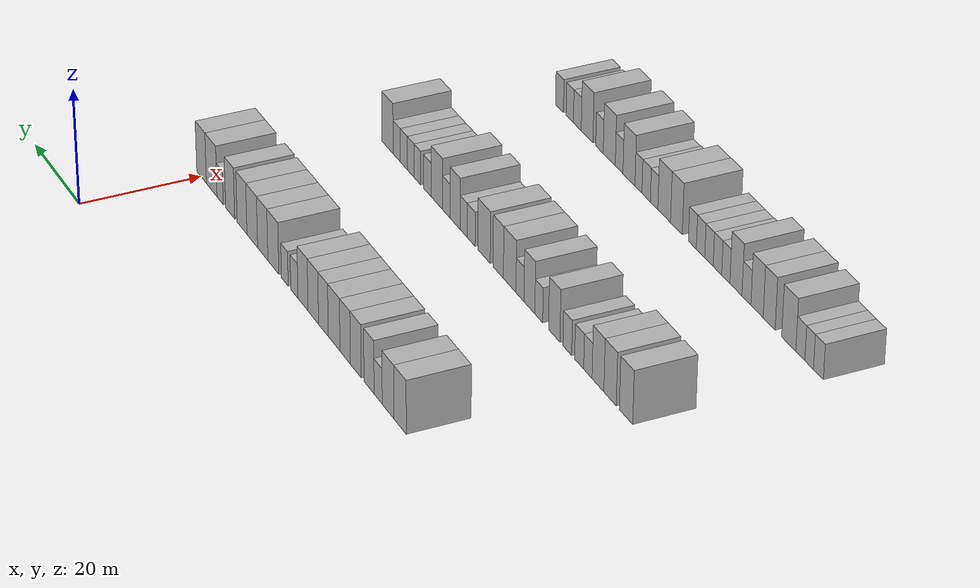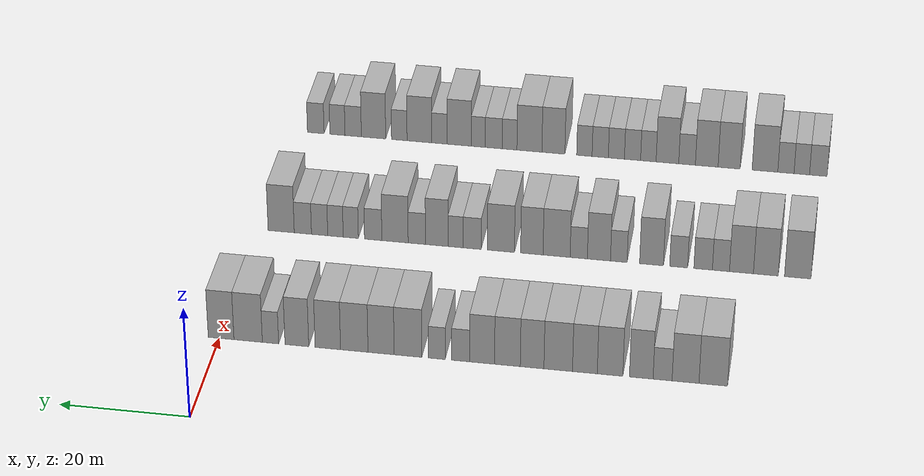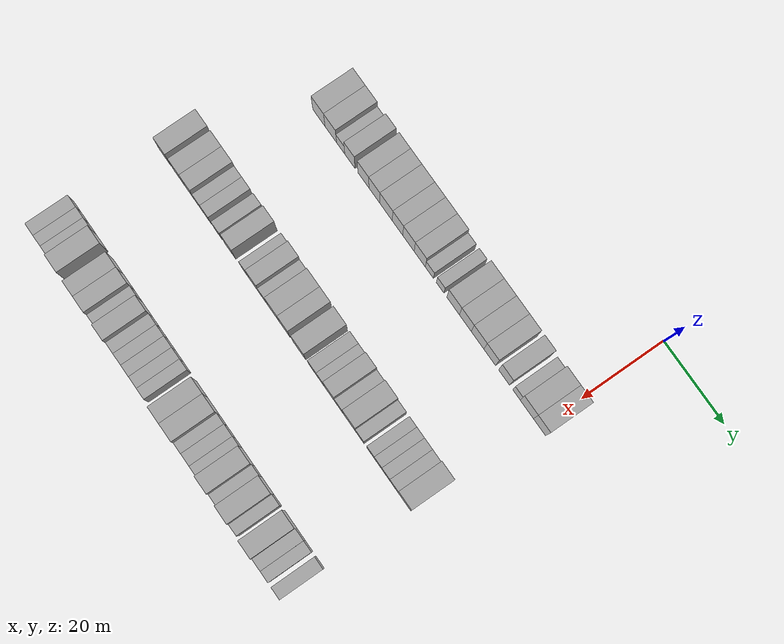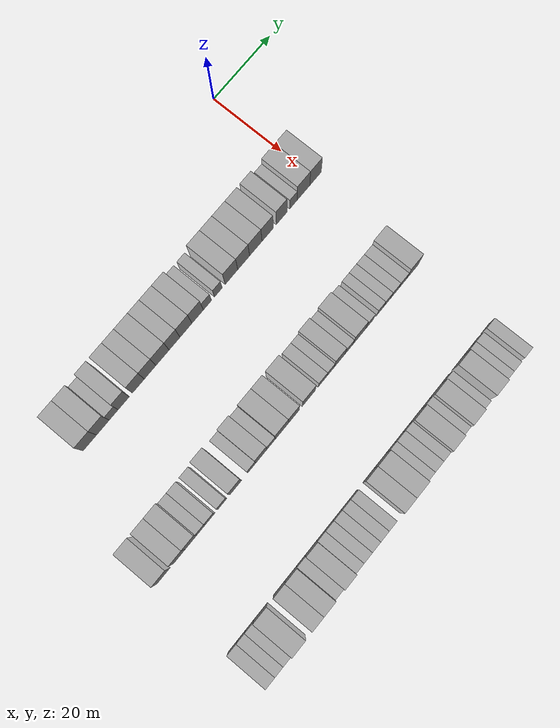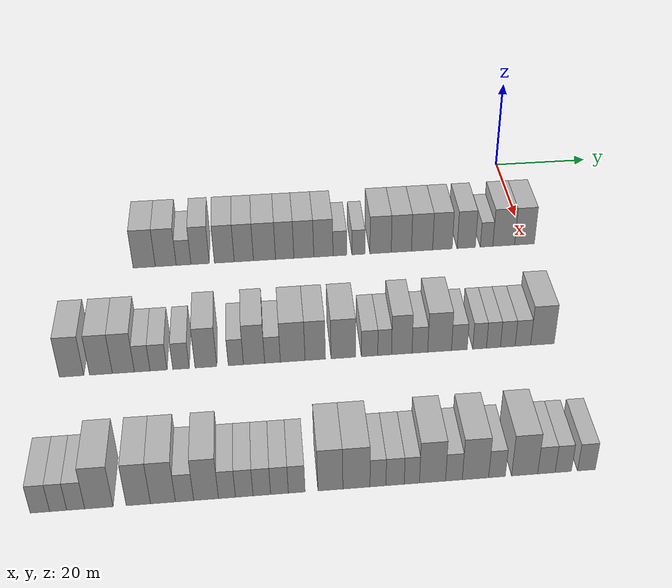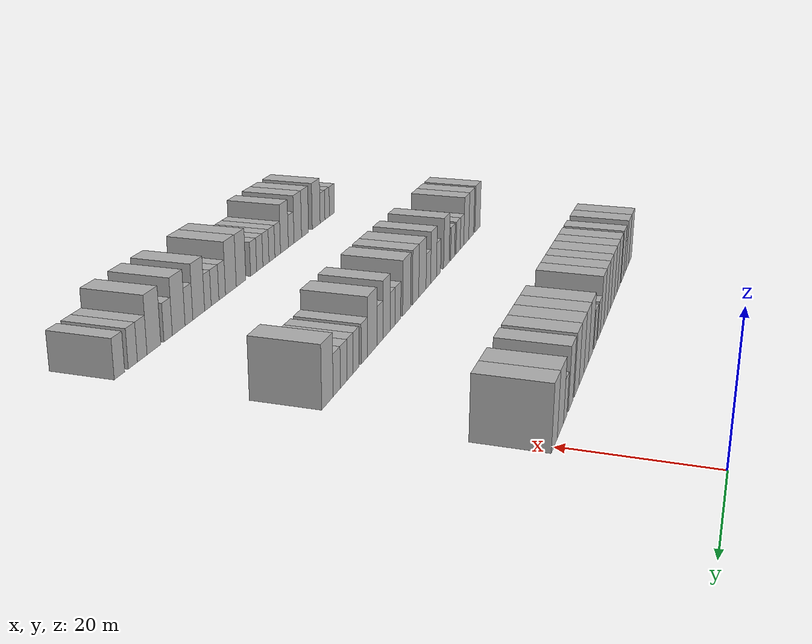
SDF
<sdf version="1.6">
 <world name="default">
  <model name="building_50">
   <static>1</static>
   <pose>25.0000 -76.2877 0 0.000000 0.000000 0.000000</pose>
   <link name="link">
    <pose>0 0 4.50 0 0 0</pose>
    <collision name="collision"><geometry><box><size>10.0000 4.3234 9.0000</size></box></geometry></collision>
    <visual name="visual">
     <cast_shadows>0</cast_shadows>
     <geometry><box><size>10.0000 4.3234 9.0000</size></box></geometry>
     <material>
      <script>
       <uri>model://HANNAS_wall/materials/scripts</uri>
       <uri>model://HANNAS_wall/materials/textures</uri>
       <name>vrc/HANNAS_wall</name>
      </script>
     </material>
    </visual>
   </link>
  </model>
  <model name="building_51">
   <static>1</static>
   <pose>25.0000 -72.0856 0 0.000000 0.000000 0.000000</pose>
   <link name="link">
    <pose>0 0 4.50 0 0 0</pose>
    <collision name="collision"><geometry><box><size>10.0000 4.0809 9.0000</size></box></geometry></collision>
    <visual name="visual">
     <cast_shadows>0</cast_shadows>
     <geometry><box><size>10.0000 4.0809 9.0000</size></box></geometry>
     <material>
      <script>
       <uri>model://HANNAS_wall/materials/scripts</uri>
       <uri>model://HANNAS_wall/materials/textures</uri>
       <name>vrc/HANNAS_wall</name>
      </script>
     </material>
    </visual>
   </link>
  </model>
  <model name="building_52">
   <static>1</static>
   <pose>25.0000 -68.6039 0 0.000000 0.000000 0.000000</pose>
   <link name="link">
    <pose>0 0 3.00 0 0 0</pose>
    <collision name="collision"><geometry><box><size>10.0000 2.8825 6.0000</size></box></geometry></collision>
    <visual name="visual">
     <cast_shadows>0</cast_shadows>
     <geometry><box><size>10.0000 2.8825 6.0000</size></box></geometry>
     <material>
      <script>
       <uri>model://HANNAS_wall/materials/scripts</uri>
       <uri>model://HANNAS_wall/materials/textures</uri>
       <name>vrc/HANNAS_wall</name>
      </script>
     </material>
    </visual>
   </link>
  </model>
  <model name="building_53">
   <static>1</static>
   <pose>25.0000 -65.3597 0 0.000000 0.000000 0.000000</pose>
   <link name="link">
    <pose>0 0 4.50 0 0 0</pose>
    <collision name="collision"><geometry><box><size>10.0000 3.6057 9.0000</size></box></geometry></collision>
    <visual name="visual">
     <cast_shadows>0</cast_shadows>
     <geometry><box><size>10.0000 3.6057 9.0000</size></box></geometry>
     <material>
      <script>
       <uri>model://HANNAS_wall/materials/scripts</uri>
       <uri>model://HANNAS_wall/materials/textures</uri>
       <name>vrc/HANNAS_wall</name>
      </script>
     </material>
    </visual>
   </link>
  </model>
  <model name="building_54">
   <static>1</static>
   <pose>25.0000 -60.6032 0 0.000000 0.000000 0.000000</pose>
   <link name="link">
    <pose>0 0 4.50 0 0 0</pose>
    <collision name="collision"><geometry><box><size>10.0000 3.9074 9.0000</size></box></geometry></collision>
    <visual name="visual">
     <cast_shadows>0</cast_shadows>
     <geometry><box><size>10.0000 3.9074 9.0000</size></box></geometry>
     <material>
      <script>
       <uri>model://HANNAS_wall/materials/scripts</uri>
       <uri>model://HANNAS_wall/materials/textures</uri>
       <name>vrc/HANNAS_wall</name>
      </script>
     </material>
    </visual>
   </link>
  </model>
  <model name="building_55">
   <static>1</static>
   <pose>25.0000 -56.7552 0 0.000000 0.000000 0.000000</pose>
   <link name="link">
    <pose>0 0 4.50 0 0 0</pose>
    <collision name="collision"><geometry><box><size>10.0000 3.7886 9.0000</size></box></geometry></collision>
    <visual name="visual">
     <cast_shadows>0</cast_shadows>
     <geometry><box><size>10.0000 3.7886 9.0000</size></box></geometry>
     <material>
      <script>
       <uri>model://HANNAS_wall/materials/scripts</uri>
       <uri>model://HANNAS_wall/materials/textures</uri>
       <name>vrc/HANNAS_wall</name>
      </script>
     </material>
    </visual>
   </link>
  </model>
  <model name="building_56">
   <static>1</static>
   <pose>25.0000 -52.6733 0 0.000000 0.000000 0.000000</pose>
   <link name="link">
    <pose>0 0 4.50 0 0 0</pose>
    <collision name="collision"><geometry><box><size>10.0000 4.3752 9.0000</size></box></geometry></collision>
    <visual name="visual">
     <cast_shadows>0</cast_shadows>
     <geometry><box><size>10.0000 4.3752 9.0000</size></box></geometry>
     <material>
      <script>
       <uri>model://HANNAS_wall/materials/scripts</uri>
       <uri>model://HANNAS_wall/materials/textures</uri>
       <name>vrc/HANNAS_wall</name>
      </script>
     </material>
    </visual>
   </link>
  </model>
  <model name="building_57">
   <static>1</static>
   <pose>25.0000 -48.6687 0 0.000000 0.000000 0.000000</pose>
   <link name="link">
    <pose>0 0 4.50 0 0 0</pose>
    <collision name="collision"><geometry><box><size>10.0000 3.6341 9.0000</size></box></geometry></collision>
    <visual name="visual">
     <cast_shadows>0</cast_shadows>
     <geometry><box><size>10.0000 3.6341 9.0000</size></box></geometry>
     <material>
      <script>
       <uri>model://HANNAS_wall/materials/scripts</uri>
       <uri>model://HANNAS_wall/materials/textures</uri>
       <name>vrc/HANNAS_wall</name>
      </script>
     </material>
    </visual>
   </link>
  </model>
  <model name="building_58">
   <static>1</static>
   <pose>25.0000 -44.8705 0 0.000000 0.000000 0.000000</pose>
   <link name="link">
    <pose>0 0 4.50 0 0 0</pose>
    <collision name="collision"><geometry><box><size>10.0000 3.9623 9.0000</size></box></geometry></collision>
    <visual name="visual">
     <cast_shadows>0</cast_shadows>
     <geometry><box><size>10.0000 3.9623 9.0000</size></box></geometry>
     <material>
      <script>
       <uri>model://HANNAS_wall/materials/scripts</uri>
       <uri>model://HANNAS_wall/materials/textures</uri>
       <name>vrc/HANNAS_wall</name>
      </script>
     </material>
    </visual>
   </link>
  </model>
  <model name="building_59">
   <static>1</static>
   <pose>25.0000 -40.9646 0 0.000000 0.000000 0.000000</pose>
   <link name="link">
    <pose>0 0 4.50 0 0 0</pose>
    <collision name="collision"><geometry><box><size>10.0000 3.8495 9.0000</size></box></geometry></collision>
    <visual name="visual">
     <cast_shadows>0</cast_shadows>
     <geometry><box><size>10.0000 3.8495 9.0000</size></box></geometry>
     <material>
      <script>
       <uri>model://HANNAS_wall/materials/scripts</uri>
       <uri>model://HANNAS_wall/materials/textures</uri>
       <name>vrc/HANNAS_wall</name>
      </script>
     </material>
    </visual>
   </link>
  </model>
  <model name="building_60">
   <static>1</static>
   <pose>25.0000 -37.6513 0 0.000000 0.000000 0.000000</pose>
   <link name="link">
    <pose>0 0 3.00 0 0 0</pose>
    <collision name="collision"><geometry><box><size>10.0000 2.7770 6.0000</size></box></geometry></collision>
    <visual name="visual">
     <cast_shadows>0</cast_shadows>
     <geometry><box><size>10.0000 2.7770 6.0000</size></box></geometry>
     <material>
      <script>
       <uri>model://HANNAS_wall/materials/scripts</uri>
       <uri>model://HANNAS_wall/materials/textures</uri>
       <name>vrc/HANNAS_wall</name>
      </script>
     </material>
    </visual>
   </link>
  </model>
  <model name="building_61">
   <static>1</static>
   <pose>25.0000 -33.9535 0 0.000000 0.000000 0.000000</pose>
   <link name="link">
    <pose>0 0 3.00 0 0 0</pose>
    <collision name="collision"><geometry><box><size>10.0000 2.6188 6.0000</size></box></geometry></collision>
    <visual name="visual">
     <cast_shadows>0</cast_shadows>
     <geometry><box><size>10.0000 2.6188 6.0000</size></box></geometry>
     <material>
      <script>
       <uri>model://HANNAS_wall/materials/scripts</uri>
       <uri>model://HANNAS_wall/materials/textures</uri>
       <name>vrc/HANNAS_wall</name>
      </script>
     </material>
    </visual>
   </link>
  </model>
  <model name="building_62">
   <static>1</static>
   <pose>25.0000 -29.4940 0 0.000000 0.000000 0.000000</pose>
   <link name="link">
    <pose>0 0 4.50 0 0 0</pose>
    <collision name="collision"><geometry><box><size>10.0000 4.3001 9.0000</size></box></geometry></collision>
    <visual name="visual">
     <cast_shadows>0</cast_shadows>
     <geometry><box><size>10.0000 4.3001 9.0000</size></box></geometry>
     <material>
      <script>
       <uri>model://HANNAS_wall/materials/scripts</uri>
       <uri>model://HANNAS_wall/materials/textures</uri>
       <name>vrc/HANNAS_wall</name>
      </script>
     </material>
    </visual>
   </link>
  </model>
  <model name="building_63">
   <static>1</static>
   <pose>25.0000 -25.3099 0 0.000000 0.000000 0.000000</pose>
   <link name="link">
    <pose>0 0 4.50 0 0 0</pose>
    <collision name="collision"><geometry><box><size>10.0000 4.0682 9.0000</size></box></geometry></collision>
    <visual name="visual">
     <cast_shadows>0</cast_shadows>
     <geometry><box><size>10.0000 4.0682 9.0000</size></box></geometry>
     <material>
      <script>
       <uri>model://HANNAS_wall/materials/scripts</uri>
       <uri>model://HANNAS_wall/materials/textures</uri>
       <name>vrc/HANNAS_wall</name>
      </script>
     </material>
    </visual>
   </link>
  </model>
  <model name="building_64">
   <static>1</static>
   <pose>25.0000 -21.1344 0 0.000000 0.000000 0.000000</pose>
   <link name="link">
    <pose>0 0 4.50 0 0 0</pose>
    <collision name="collision"><geometry><box><size>10.0000 4.2827 9.0000</size></box></geometry></collision>
    <visual name="visual">
     <cast_shadows>0</cast_shadows>
     <geometry><box><size>10.0000 4.2827 9.0000</size></box></geometry>
     <material>
      <script>
       <uri>model://HANNAS_wall/materials/scripts</uri>
       <uri>model://HANNAS_wall/materials/textures</uri>
       <name>vrc/HANNAS_wall</name>
      </script>
     </material>
    </visual>
   </link>
  </model>
  <model name="building_65">
   <static>1</static>
   <pose>25.0000 -17.0061 0 0.000000 0.000000 0.000000</pose>
   <link name="link">
    <pose>0 0 4.50 0 0 0</pose>
    <collision name="collision"><geometry><box><size>10.0000 3.9739 9.0000</size></box></geometry></collision>
    <visual name="visual">
     <cast_shadows>0</cast_shadows>
     <geometry><box><size>10.0000 3.9739 9.0000</size></box></geometry>
     <material>
      <script>
       <uri>model://HANNAS_wall/materials/scripts</uri>
       <uri>model://HANNAS_wall/materials/textures</uri>
       <name>vrc/HANNAS_wall</name>
      </script>
     </material>
    </visual>
   </link>
  </model>
  <model name="building_66">
   <static>1</static>
   <pose>25.0000 -12.1578 0 0.000000 0.000000 0.000000</pose>
   <link name="link">
    <pose>0 0 4.50 0 0 0</pose>
    <collision name="collision"><geometry><box><size>10.0000 3.7227 9.0000</size></box></geometry></collision>
    <visual name="visual">
     <cast_shadows>0</cast_shadows>
     <geometry><box><size>10.0000 3.7227 9.0000</size></box></geometry>
     <material>
      <script>
       <uri>model://HANNAS_wall/materials/scripts</uri>
       <uri>model://HANNAS_wall/materials/textures</uri>
       <name>vrc/HANNAS_wall</name>
      </script>
     </material>
    </visual>
   </link>
  </model>
  <model name="building_67">
   <static>1</static>
   <pose>25.0000 -8.0176 0 0.000000 0.000000 0.000000</pose>
   <link name="link">
    <pose>0 0 3.00 0 0 0</pose>
    <collision name="collision"><geometry><box><size>10.0000 2.5577 6.0000</size></box></geometry></collision>
    <visual name="visual">
     <cast_shadows>0</cast_shadows>
     <geometry><box><size>10.0000 2.5577 6.0000</size></box></geometry>
     <material>
      <script>
       <uri>model://HANNAS_wall/materials/scripts</uri>
       <uri>model://HANNAS_wall/materials/textures</uri>
       <name>vrc/HANNAS_wall</name>
      </script>
     </material>
    </visual>
   </link>
  </model>
  <model name="building_68">
   <static>1</static>
   <pose>25.0000 -4.5049 0 0.000000 0.000000 0.000000</pose>
   <link name="link">
    <pose>0 0 4.50 0 0 0</pose>
    <collision name="collision"><geometry><box><size>10.0000 4.4677 9.0000</size></box></geometry></collision>
    <visual name="visual">
     <cast_shadows>0</cast_shadows>
     <geometry><box><size>10.0000 4.4677 9.0000</size></box></geometry>
     <material>
      <script>
       <uri>model://HANNAS_wall/materials/scripts</uri>
       <uri>model://HANNAS_wall/materials/textures</uri>
       <name>vrc/HANNAS_wall</name>
      </script>
     </material>
    </visual>
   </link>
  </model>
  <model name="building_69">
   <static>1</static>
   <pose>25.0000 -0.2427 0 0.000000 0.000000 0.000000</pose>
   <link name="link">
    <pose>0 0 4.50 0 0 0</pose>
    <collision name="collision"><geometry><box><size>10.0000 4.0566 9.0000</size></box></geometry></collision>
    <visual name="visual">
     <cast_shadows>0</cast_shadows>
     <geometry><box><size>10.0000 4.0566 9.0000</size></box></geometry>
     <material>
      <script>
       <uri>model://HANNAS_wall/materials/scripts</uri>
       <uri>model://HANNAS_wall/materials/textures</uri>
       <name>vrc/HANNAS_wall</name>
      </script>
     </material>
    </visual>
   </link>
  </model>
  <model name="building_182">
   <static>1</static>
   <pose>55.0000 -87.1443 0 0.000000 0.000000 0.000000</pose>
   <link name="link">
    <pose>0 0 4.50 0 0 0</pose>
    <collision name="collision"><geometry><box><size>10.0000 4.1905 9.0000</size></box></geometry></collision>
    <visual name="visual">
     <cast_shadows>0</cast_shadows>
     <geometry><box><size>10.0000 4.1905 9.0000</size></box></geometry>
     <material>
      <script>
       <uri>model://HANNAS_wall/materials/scripts</uri>
       <uri>model://HANNAS_wall/materials/textures</uri>
       <name>vrc/HANNAS_wall</name>
      </script>
     </material>
    </visual>
   </link>
  </model>
  <model name="building_183">
   <static>1</static>
   <pose>55.0000 -82.0812 0 0.000000 0.000000 0.000000</pose>
   <link name="link">
    <pose>0 0 4.50 0 0 0</pose>
    <collision name="collision"><geometry><box><size>10.0000 3.9358 9.0000</size></box></geometry></collision>
    <visual name="visual">
     <cast_shadows>0</cast_shadows>
     <geometry><box><size>10.0000 3.9358 9.0000</size></box></geometry>
     <material>
      <script>
       <uri>model://HANNAS_wall/materials/scripts</uri>
       <uri>model://HANNAS_wall/materials/textures</uri>
       <name>vrc/HANNAS_wall</name>
      </script>
     </material>
    </visual>
   </link>
  </model>
  <model name="building_184">
   <static>1</static>
   <pose>55.0000 -78.2074 0 0.000000 0.000000 0.000000</pose>
   <link name="link">
    <pose>0 0 4.50 0 0 0</pose>
    <collision name="collision"><geometry><box><size>10.0000 3.8120 9.0000</size></box></geometry></collision>
    <visual name="visual">
     <cast_shadows>0</cast_shadows>
     <geometry><box><size>10.0000 3.8120 9.0000</size></box></geometry>
     <material>
      <script>
       <uri>model://HANNAS_wall/materials/scripts</uri>
       <uri>model://HANNAS_wall/materials/textures</uri>
       <name>vrc/HANNAS_wall</name>
      </script>
     </material>
    </visual>
   </link>
  </model>
  <model name="building_185">
   <static>1</static>
   <pose>55.0000 -74.9415 0 0.000000 0.000000 0.000000</pose>
   <link name="link">
    <pose>0 0 3.00 0 0 0</pose>
    <collision name="collision"><geometry><box><size>10.0000 2.7197 6.0000</size></box></geometry></collision>
    <visual name="visual">
     <cast_shadows>0</cast_shadows>
     <geometry><box><size>10.0000 2.7197 6.0000</size></box></geometry>
     <material>
      <script>
       <uri>model://HANNAS_wall/materials/scripts</uri>
       <uri>model://HANNAS_wall/materials/textures</uri>
       <name>vrc/HANNAS_wall</name>
      </script>
     </material>
    </visual>
   </link>
  </model>
  <model name="building_186">
   <static>1</static>
   <pose>55.0000 -72.1028 0 0.000000 0.000000 0.000000</pose>
   <link name="link">
    <pose>0 0 3.00 0 0 0</pose>
    <collision name="collision"><geometry><box><size>10.0000 2.9577 6.0000</size></box></geometry></collision>
    <visual name="visual">
     <cast_shadows>0</cast_shadows>
     <geometry><box><size>10.0000 2.9577 6.0000</size></box></geometry>
     <material>
      <script>
       <uri>model://HANNAS_wall/materials/scripts</uri>
       <uri>model://HANNAS_wall/materials/textures</uri>
       <name>vrc/HANNAS_wall</name>
      </script>
     </material>
    </visual>
   </link>
  </model>
  <model name="building_187">
   <static>1</static>
   <pose>55.0000 -68.1859 0 0.000000 0.000000 0.000000</pose>
   <link name="link">
    <pose>0 0 3.00 0 0 0</pose>
    <collision name="collision"><geometry><box><size>10.0000 2.8761 6.0000</size></box></geometry></collision>
    <visual name="visual">
     <cast_shadows>0</cast_shadows>
     <geometry><box><size>10.0000 2.8761 6.0000</size></box></geometry>
     <material>
      <script>
       <uri>model://HANNAS_wall/materials/scripts</uri>
       <uri>model://HANNAS_wall/materials/textures</uri>
       <name>vrc/HANNAS_wall</name>
      </script>
     </material>
    </visual>
   </link>
  </model>
  <model name="building_188">
   <static>1</static>
   <pose>55.0000 -63.8369 0 0.000000 0.000000 0.000000</pose>
   <link name="link">
    <pose>0 0 4.50 0 0 0</pose>
    <collision name="collision"><geometry><box><size>10.0000 3.8219 9.0000</size></box></geometry></collision>
    <visual name="visual">
     <cast_shadows>0</cast_shadows>
     <geometry><box><size>10.0000 3.8219 9.0000</size></box></geometry>
     <material>
      <script>
       <uri>model://HANNAS_wall/materials/scripts</uri>
       <uri>model://HANNAS_wall/materials/textures</uri>
       <name>vrc/HANNAS_wall</name>
      </script>
     </material>
    </visual>
   </link>
  </model>
  <model name="building_189">
   <static>1</static>
   <pose>55.0000 -58.5905 0 0.000000 0.000000 0.000000</pose>
   <link name="link">
    <pose>0 0 3.00 0 0 0</pose>
    <collision name="collision"><geometry><box><size>10.0000 2.6709 6.0000</size></box></geometry></collision>
    <visual name="visual">
     <cast_shadows>0</cast_shadows>
     <geometry><box><size>10.0000 2.6709 6.0000</size></box></geometry>
     <material>
      <script>
       <uri>model://HANNAS_wall/materials/scripts</uri>
       <uri>model://HANNAS_wall/materials/textures</uri>
       <name>vrc/HANNAS_wall</name>
      </script>
     </material>
    </visual>
   </link>
  </model>
  <model name="building_190">
   <static>1</static>
   <pose>55.0000 -55.3895 0 0.000000 0.000000 0.000000</pose>
   <link name="link">
    <pose>0 0 4.50 0 0 0</pose>
    <collision name="collision"><geometry><box><size>10.0000 3.7311 9.0000</size></box></geometry></collision>
    <visual name="visual">
     <cast_shadows>0</cast_shadows>
     <geometry><box><size>10.0000 3.7311 9.0000</size></box></geometry>
     <material>
      <script>
       <uri>model://HANNAS_wall/materials/scripts</uri>
       <uri>model://HANNAS_wall/materials/textures</uri>
       <name>vrc/HANNAS_wall</name>
      </script>
     </material>
    </visual>
   </link>
  </model>
  <model name="building_191">
   <static>1</static>
   <pose>55.0000 -52.1353 0 0.000000 0.000000 0.000000</pose>
   <link name="link">
    <pose>0 0 3.00 0 0 0</pose>
    <collision name="collision"><geometry><box><size>10.0000 2.7772 6.0000</size></box></geometry></collision>
    <visual name="visual">
     <cast_shadows>0</cast_shadows>
     <geometry><box><size>10.0000 2.7772 6.0000</size></box></geometry>
     <material>
      <script>
       <uri>model://HANNAS_wall/materials/scripts</uri>
       <uri>model://HANNAS_wall/materials/textures</uri>
       <name>vrc/HANNAS_wall</name>
      </script>
     </material>
    </visual>
   </link>
  </model>
  <model name="building_192">
   <static>1</static>
   <pose>55.0000 -48.5587 0 0.000000 0.000000 0.000000</pose>
   <link name="link">
    <pose>0 0 4.50 0 0 0</pose>
    <collision name="collision"><geometry><box><size>10.0000 4.3759 9.0000</size></box></geometry></collision>
    <visual name="visual">
     <cast_shadows>0</cast_shadows>
     <geometry><box><size>10.0000 4.3759 9.0000</size></box></geometry>
     <material>
      <script>
       <uri>model://HANNAS_wall/materials/scripts</uri>
       <uri>model://HANNAS_wall/materials/textures</uri>
       <name>vrc/HANNAS_wall</name>
      </script>
     </material>
    </visual>
   </link>
  </model>
  <model name="building_193">
   <static>1</static>
   <pose>55.0000 -44.5555 0 0.000000 0.000000 0.000000</pose>
   <link name="link">
    <pose>0 0 4.50 0 0 0</pose>
    <collision name="collision"><geometry><box><size>10.0000 3.6306 9.0000</size></box></geometry></collision>
    <visual name="visual">
     <cast_shadows>0</cast_shadows>
     <geometry><box><size>10.0000 3.6306 9.0000</size></box></geometry>
     <material>
      <script>
       <uri>model://HANNAS_wall/materials/scripts</uri>
       <uri>model://HANNAS_wall/materials/textures</uri>
       <name>vrc/HANNAS_wall</name>
      </script>
     </material>
    </visual>
   </link>
  </model>
  <model name="building_194">
   <static>1</static>
   <pose>55.0000 -39.5375 0 0.000000 0.000000 0.000000</pose>
   <link name="link">
    <pose>0 0 4.50 0 0 0</pose>
    <collision name="collision"><geometry><box><size>10.0000 4.4055 9.0000</size></box></geometry></collision>
    <visual name="visual">
     <cast_shadows>0</cast_shadows>
     <geometry><box><size>10.0000 4.4055 9.0000</size></box></geometry>
     <material>
      <script>
       <uri>model://HANNAS_wall/materials/scripts</uri>
       <uri>model://HANNAS_wall/materials/textures</uri>
       <name>vrc/HANNAS_wall</name>
      </script>
     </material>
    </visual>
   </link>
  </model>
  <model name="building_195">
   <static>1</static>
   <pose>55.0000 -34.8667 0 0.000000 0.000000 0.000000</pose>
   <link name="link">
    <pose>0 0 3.00 0 0 0</pose>
    <collision name="collision"><geometry><box><size>10.0000 2.9359 6.0000</size></box></geometry></collision>
    <visual name="visual">
     <cast_shadows>0</cast_shadows>
     <geometry><box><size>10.0000 2.9359 6.0000</size></box></geometry>
     <material>
      <script>
       <uri>model://HANNAS_wall/materials/scripts</uri>
       <uri>model://HANNAS_wall/materials/textures</uri>
       <name>vrc/HANNAS_wall</name>
      </script>
     </material>
    </visual>
   </link>
  </model>
  <model name="building_196">
   <static>1</static>
   <pose>55.0000 -32.1619 0 0.000000 0.000000 0.000000</pose>
   <link name="link">
    <pose>0 0 3.00 0 0 0</pose>
    <collision name="collision"><geometry><box><size>10.0000 2.4738 6.0000</size></box></geometry></collision>
    <visual name="visual">
     <cast_shadows>0</cast_shadows>
     <geometry><box><size>10.0000 2.4738 6.0000</size></box></geometry>
     <material>
      <script>
       <uri>model://HANNAS_wall/materials/scripts</uri>
       <uri>model://HANNAS_wall/materials/textures</uri>
       <name>vrc/HANNAS_wall</name>
      </script>
     </material>
    </visual>
   </link>
  </model>
  <model name="building_197">
   <static>1</static>
   <pose>55.0000 -29.0863 0 0.000000 0.000000 0.000000</pose>
   <link name="link">
    <pose>0 0 4.50 0 0 0</pose>
    <collision name="collision"><geometry><box><size>10.0000 3.6772 9.0000</size></box></geometry></collision>
    <visual name="visual">
     <cast_shadows>0</cast_shadows>
     <geometry><box><size>10.0000 3.6772 9.0000</size></box></geometry>
     <material>
      <script>
       <uri>model://HANNAS_wall/materials/scripts</uri>
       <uri>model://HANNAS_wall/materials/textures</uri>
       <name>vrc/HANNAS_wall</name>
      </script>
     </material>
    </visual>
   </link>
  </model>
  <model name="building_198">
   <static>1</static>
   <pose>55.0000 -25.8302 0 0.000000 0.000000 0.000000</pose>
   <link name="link">
    <pose>0 0 3.00 0 0 0</pose>
    <collision name="collision"><geometry><box><size>10.0000 2.8351 6.0000</size></box></geometry></collision>
    <visual name="visual">
     <cast_shadows>0</cast_shadows>
     <geometry><box><size>10.0000 2.8351 6.0000</size></box></geometry>
     <material>
      <script>
       <uri>model://HANNAS_wall/materials/scripts</uri>
       <uri>model://HANNAS_wall/materials/textures</uri>
       <name>vrc/HANNAS_wall</name>
      </script>
     </material>
    </visual>
   </link>
  </model>
  <model name="building_199">
   <static>1</static>
   <pose>55.0000 -22.2608 0 0.000000 0.000000 0.000000</pose>
   <link name="link">
    <pose>0 0 4.50 0 0 0</pose>
    <collision name="collision"><geometry><box><size>10.0000 4.3036 9.0000</size></box></geometry></collision>
    <visual name="visual">
     <cast_shadows>0</cast_shadows>
     <geometry><box><size>10.0000 4.3036 9.0000</size></box></geometry>
     <material>
      <script>
       <uri>model://HANNAS_wall/materials/scripts</uri>
       <uri>model://HANNAS_wall/materials/textures</uri>
       <name>vrc/HANNAS_wall</name>
      </script>
     </material>
    </visual>
   </link>
  </model>
  <model name="building_200">
   <static>1</static>
   <pose>55.0000 -18.6801 0 0.000000 0.000000 0.000000</pose>
   <link name="link">
    <pose>0 0 3.00 0 0 0</pose>
    <collision name="collision"><geometry><box><size>10.0000 2.8578 6.0000</size></box></geometry></collision>
    <visual name="visual">
     <cast_shadows>0</cast_shadows>
     <geometry><box><size>10.0000 2.8578 6.0000</size></box></geometry>
     <material>
      <script>
       <uri>model://HANNAS_wall/materials/scripts</uri>
       <uri>model://HANNAS_wall/materials/textures</uri>
       <name>vrc/HANNAS_wall</name>
      </script>
     </material>
    </visual>
   </link>
  </model>
  <model name="building_201">
   <static>1</static>
   <pose>55.0000 -15.0041 0 0.000000 0.000000 0.000000</pose>
   <link name="link">
    <pose>0 0 3.00 0 0 0</pose>
    <collision name="collision"><geometry><box><size>10.0000 2.4942 6.0000</size></box></geometry></collision>
    <visual name="visual">
     <cast_shadows>0</cast_shadows>
     <geometry><box><size>10.0000 2.4942 6.0000</size></box></geometry>
     <material>
      <script>
       <uri>model://HANNAS_wall/materials/scripts</uri>
       <uri>model://HANNAS_wall/materials/textures</uri>
       <name>vrc/HANNAS_wall</name>
      </script>
     </material>
    </visual>
   </link>
  </model>
  <model name="building_202">
   <static>1</static>
   <pose>55.0000 -12.4826 0 0.000000 0.000000 0.000000</pose>
   <link name="link">
    <pose>0 0 3.00 0 0 0</pose>
    <collision name="collision"><geometry><box><size>10.0000 2.5489 6.0000</size></box></geometry></collision>
    <visual name="visual">
     <cast_shadows>0</cast_shadows>
     <geometry><box><size>10.0000 2.5489 6.0000</size></box></geometry>
     <material>
      <script>
       <uri>model://HANNAS_wall/materials/scripts</uri>
       <uri>model://HANNAS_wall/materials/textures</uri>
       <name>vrc/HANNAS_wall</name>
      </script>
     </material>
    </visual>
   </link>
  </model>
  <model name="building_203">
   <static>1</static>
   <pose>55.0000 -9.8661 0 0.000000 0.000000 0.000000</pose>
   <link name="link">
    <pose>0 0 3.00 0 0 0</pose>
    <collision name="collision"><geometry><box><size>10.0000 2.6841 6.0000</size></box></geometry></collision>
    <visual name="visual">
     <cast_shadows>0</cast_shadows>
     <geometry><box><size>10.0000 2.6841 6.0000</size></box></geometry>
     <material>
      <script>
       <uri>model://HANNAS_wall/materials/scripts</uri>
       <uri>model://HANNAS_wall/materials/textures</uri>
       <name>vrc/HANNAS_wall</name>
      </script>
     </material>
    </visual>
   </link>
  </model>
  <model name="building_204">
   <static>1</static>
   <pose>55.0000 -7.1047 0 0.000000 0.000000 0.000000</pose>
   <link name="link">
    <pose>0 0 3.00 0 0 0</pose>
    <collision name="collision"><geometry><box><size>10.0000 2.8387 6.0000</size></box></geometry></collision>
    <visual name="visual">
     <cast_shadows>0</cast_shadows>
     <geometry><box><size>10.0000 2.8387 6.0000</size></box></geometry>
     <material>
      <script>
       <uri>model://HANNAS_wall/materials/scripts</uri>
       <uri>model://HANNAS_wall/materials/textures</uri>
       <name>vrc/HANNAS_wall</name>
      </script>
     </material>
    </visual>
   </link>
  </model>
  <model name="building_205">
   <static>1</static>
   <pose>55.0000 -3.5243 0 0.000000 0.000000 0.000000</pose>
   <link name="link">
    <pose>0 0 4.50 0 0 0</pose>
    <collision name="collision"><geometry><box><size>10.0000 4.3221 9.0000</size></box></geometry></collision>
    <visual name="visual">
     <cast_shadows>0</cast_shadows>
     <geometry><box><size>10.0000 4.3221 9.0000</size></box></geometry>
     <material>
      <script>
       <uri>model://HANNAS_wall/materials/scripts</uri>
       <uri>model://HANNAS_wall/materials/textures</uri>
       <name>vrc/HANNAS_wall</name>
      </script>
     </material>
    </visual>
   </link>
  </model>
  <model name="building_315">
   <static>1</static>
   <pose>85.0000 -88.6807 0 0.000000 0.000000 0.000000</pose>
   <link name="link">
    <pose>0 0 3.00 0 0 0</pose>
    <collision name="collision"><geometry><box><size>10.0000 2.9202 6.0000</size></box></geometry></collision>
    <visual name="visual">
     <cast_shadows>0</cast_shadows>
     <geometry><box><size>10.0000 2.9202 6.0000</size></box></geometry>
     <material>
      <script>
       <uri>model://HANNAS_wall/materials/scripts</uri>
       <uri>model://HANNAS_wall/materials/textures</uri>
       <name>vrc/HANNAS_wall</name>
      </script>
     </material>
    </visual>
   </link>
  </model>
  <model name="building_316">
   <static>1</static>
   <pose>85.0000 -85.9334 0 0.000000 0.000000 0.000000</pose>
   <link name="link">
    <pose>0 0 3.00 0 0 0</pose>
    <collision name="collision"><geometry><box><size>10.0000 2.5745 6.0000</size></box></geometry></collision>
    <visual name="visual">
     <cast_shadows>0</cast_shadows>
     <geometry><box><size>10.0000 2.5745 6.0000</size></box></geometry>
     <material>
      <script>
       <uri>model://HANNAS_wall/materials/scripts</uri>
       <uri>model://HANNAS_wall/materials/textures</uri>
       <name>vrc/HANNAS_wall</name>
      </script>
     </material>
    </visual>
   </link>
  </model>
  <model name="building_317">
   <static>1</static>
   <pose>85.0000 -83.2905 0 0.000000 0.000000 0.000000</pose>
   <link name="link">
    <pose>0 0 3.00 0 0 0</pose>
    <collision name="collision"><geometry><box><size>10.0000 2.7111 6.0000</size></box></geometry></collision>
    <visual name="visual">
     <cast_shadows>0</cast_shadows>
     <geometry><box><size>10.0000 2.7111 6.0000</size></box></geometry>
     <material>
      <script>
       <uri>model://HANNAS_wall/materials/scripts</uri>
       <uri>model://HANNAS_wall/materials/textures</uri>
       <name>vrc/HANNAS_wall</name>
      </script>
     </material>
    </visual>
   </link>
  </model>
  <model name="building_318">
   <static>1</static>
   <pose>85.0000 -79.7906 0 0.000000 0.000000 0.000000</pose>
   <link name="link">
    <pose>0 0 4.50 0 0 0</pose>
    <collision name="collision"><geometry><box><size>10.0000 4.2887 9.0000</size></box></geometry></collision>
    <visual name="visual">
     <cast_shadows>0</cast_shadows>
     <geometry><box><size>10.0000 4.2887 9.0000</size></box></geometry>
     <material>
      <script>
       <uri>model://HANNAS_wall/materials/scripts</uri>
       <uri>model://HANNAS_wall/materials/textures</uri>
       <name>vrc/HANNAS_wall</name>
      </script>
     </material>
    </visual>
   </link>
  </model>
  <model name="building_319">
   <static>1</static>
   <pose>85.0000 -73.8012 0 0.000000 0.000000 0.000000</pose>
   <link name="link">
    <pose>0 0 4.50 0 0 0</pose>
    <collision name="collision"><geometry><box><size>10.0000 3.6901 9.0000</size></box></geometry></collision>
    <visual name="visual">
     <cast_shadows>0</cast_shadows>
     <geometry><box><size>10.0000 3.6901 9.0000</size></box></geometry>
     <material>
      <script>
       <uri>model://HANNAS_wall/materials/scripts</uri>
       <uri>model://HANNAS_wall/materials/textures</uri>
       <name>vrc/HANNAS_wall</name>
      </script>
     </material>
    </visual>
   </link>
  </model>
  <model name="building_320">
   <static>1</static>
   <pose>85.0000 -70.0503 0 0.000000 0.000000 0.000000</pose>
   <link name="link">
    <pose>0 0 4.50 0 0 0</pose>
    <collision name="collision"><geometry><box><size>10.0000 3.8117 9.0000</size></box></geometry></collision>
    <visual name="visual">
     <cast_shadows>0</cast_shadows>
     <geometry><box><size>10.0000 3.8117 9.0000</size></box></geometry>
     <material>
      <script>
       <uri>model://HANNAS_wall/materials/scripts</uri>
       <uri>model://HANNAS_wall/materials/textures</uri>
       <name>vrc/HANNAS_wall</name>
      </script>
     </material>
    </visual>
   </link>
  </model>
  <model name="building_321">
   <static>1</static>
   <pose>85.0000 -66.7433 0 0.000000 0.000000 0.000000</pose>
   <link name="link">
    <pose>0 0 3.00 0 0 0</pose>
    <collision name="collision"><geometry><box><size>10.0000 2.8024 6.0000</size></box></geometry></collision>
    <visual name="visual">
     <cast_shadows>0</cast_shadows>
     <geometry><box><size>10.0000 2.8024 6.0000</size></box></geometry>
     <material>
      <script>
       <uri>model://HANNAS_wall/materials/scripts</uri>
       <uri>model://HANNAS_wall/materials/textures</uri>
       <name>vrc/HANNAS_wall</name>
      </script>
     </material>
    </visual>
   </link>
  </model>
  <model name="building_322">
   <static>1</static>
   <pose>85.0000 -63.4386 0 0.000000 0.000000 0.000000</pose>
   <link name="link">
    <pose>0 0 4.50 0 0 0</pose>
    <collision name="collision"><geometry><box><size>10.0000 3.8069 9.0000</size></box></geometry></collision>
    <visual name="visual">
     <cast_shadows>0</cast_shadows>
     <geometry><box><size>10.0000 3.8069 9.0000</size></box></geometry>
     <material>
      <script>
       <uri>model://HANNAS_wall/materials/scripts</uri>
       <uri>model://HANNAS_wall/materials/textures</uri>
       <name>vrc/HANNAS_wall</name>
      </script>
     </material>
    </visual>
   </link>
  </model>
  <model name="building_323">
   <static>1</static>
   <pose>85.0000 -60.2282 0 0.000000 0.000000 0.000000</pose>
   <link name="link">
    <pose>0 0 3.00 0 0 0</pose>
    <collision name="collision"><geometry><box><size>10.0000 2.6139 6.0000</size></box></geometry></collision>
    <visual name="visual">
     <cast_shadows>0</cast_shadows>
     <geometry><box><size>10.0000 2.6139 6.0000</size></box></geometry>
     <material>
      <script>
       <uri>model://HANNAS_wall/materials/scripts</uri>
       <uri>model://HANNAS_wall/materials/textures</uri>
       <name>vrc/HANNAS_wall</name>
      </script>
     </material>
    </visual>
   </link>
  </model>
  <model name="building_324">
   <static>1</static>
   <pose>85.0000 -57.5571 0 0.000000 0.000000 0.000000</pose>
   <link name="link">
    <pose>0 0 3.00 0 0 0</pose>
    <collision name="collision"><geometry><box><size>10.0000 2.7284 6.0000</size></box></geometry></collision>
    <visual name="visual">
     <cast_shadows>0</cast_shadows>
     <geometry><box><size>10.0000 2.7284 6.0000</size></box></geometry>
     <material>
      <script>
       <uri>model://HANNAS_wall/materials/scripts</uri>
       <uri>model://HANNAS_wall/materials/textures</uri>
       <name>vrc/HANNAS_wall</name>
      </script>
     </material>
    </visual>
   </link>
  </model>
  <model name="building_325">
   <static>1</static>
   <pose>85.0000 -54.8308 0 0.000000 0.000000 0.000000</pose>
   <link name="link">
    <pose>0 0 3.00 0 0 0</pose>
    <collision name="collision"><geometry><box><size>10.0000 2.7242 6.0000</size></box></geometry></collision>
    <visual name="visual">
     <cast_shadows>0</cast_shadows>
     <geometry><box><size>10.0000 2.7242 6.0000</size></box></geometry>
     <material>
      <script>
       <uri>model://HANNAS_wall/materials/scripts</uri>
       <uri>model://HANNAS_wall/materials/textures</uri>
       <name>vrc/HANNAS_wall</name>
      </script>
     </material>
    </visual>
   </link>
  </model>
  <model name="building_326">
   <static>1</static>
   <pose>85.0000 -52.0944 0 0.000000 0.000000 0.000000</pose>
   <link name="link">
    <pose>0 0 3.00 0 0 0</pose>
    <collision name="collision"><geometry><box><size>10.0000 2.7486 6.0000</size></box></geometry></collision>
    <visual name="visual">
     <cast_shadows>0</cast_shadows>
     <geometry><box><size>10.0000 2.7486 6.0000</size></box></geometry>
     <material>
      <script>
       <uri>model://HANNAS_wall/materials/scripts</uri>
       <uri>model://HANNAS_wall/materials/textures</uri>
       <name>vrc/HANNAS_wall</name>
      </script>
     </material>
    </visual>
   </link>
  </model>
  <model name="building_327">
   <static>1</static>
   <pose>85.0000 -49.4147 0 0.000000 0.000000 0.000000</pose>
   <link name="link">
    <pose>0 0 3.00 0 0 0</pose>
    <collision name="collision"><geometry><box><size>10.0000 2.6107 6.0000</size></box></geometry></collision>
    <visual name="visual">
     <cast_shadows>0</cast_shadows>
     <geometry><box><size>10.0000 2.6107 6.0000</size></box></geometry>
     <material>
      <script>
       <uri>model://HANNAS_wall/materials/scripts</uri>
       <uri>model://HANNAS_wall/materials/textures</uri>
       <name>vrc/HANNAS_wall</name>
      </script>
     </material>
    </visual>
   </link>
  </model>
  <model name="building_328">
   <static>1</static>
   <pose>85.0000 -44.1559 0 0.000000 0.000000 0.000000</pose>
   <link name="link">
    <pose>0 0 4.50 0 0 0</pose>
    <collision name="collision"><geometry><box><size>10.0000 3.9069 9.0000</size></box></geometry></collision>
    <visual name="visual">
     <cast_shadows>0</cast_shadows>
     <geometry><box><size>10.0000 3.9069 9.0000</size></box></geometry>
     <material>
      <script>
       <uri>model://HANNAS_wall/materials/scripts</uri>
       <uri>model://HANNAS_wall/materials/textures</uri>
       <name>vrc/HANNAS_wall</name>
      </script>
     </material>
    </visual>
   </link>
  </model>
  <model name="building_329">
   <static>1</static>
   <pose>85.0000 -40.0763 0 0.000000 0.000000 0.000000</pose>
   <link name="link">
    <pose>0 0 4.50 0 0 0</pose>
    <collision name="collision"><geometry><box><size>10.0000 4.2524 9.0000</size></box></geometry></collision>
    <visual name="visual">
     <cast_shadows>0</cast_shadows>
     <geometry><box><size>10.0000 4.2524 9.0000</size></box></geometry>
     <material>
      <script>
       <uri>model://HANNAS_wall/materials/scripts</uri>
       <uri>model://HANNAS_wall/materials/textures</uri>
       <name>vrc/HANNAS_wall</name>
      </script>
     </material>
    </visual>
   </link>
  </model>
  <model name="building_330">
   <static>1</static>
   <pose>85.0000 -36.6898 0 0.000000 0.000000 0.000000</pose>
   <link name="link">
    <pose>0 0 3.00 0 0 0</pose>
    <collision name="collision"><geometry><box><size>10.0000 2.5206 6.0000</size></box></geometry></collision>
    <visual name="visual">
     <cast_shadows>0</cast_shadows>
     <geometry><box><size>10.0000 2.5206 6.0000</size></box></geometry>
     <material>
      <script>
       <uri>model://HANNAS_wall/materials/scripts</uri>
       <uri>model://HANNAS_wall/materials/textures</uri>
       <name>vrc/HANNAS_wall</name>
      </script>
     </material>
    </visual>
   </link>
  </model>
  <model name="building_331">
   <static>1</static>
   <pose>85.0000 -33.9881 0 0.000000 0.000000 0.000000</pose>
   <link name="link">
    <pose>0 0 3.00 0 0 0</pose>
    <collision name="collision"><geometry><box><size>10.0000 2.8827 6.0000</size></box></geometry></collision>
    <visual name="visual">
     <cast_shadows>0</cast_shadows>
     <geometry><box><size>10.0000 2.8827 6.0000</size></box></geometry>
     <material>
      <script>
       <uri>model://HANNAS_wall/materials/scripts</uri>
       <uri>model://HANNAS_wall/materials/textures</uri>
       <name>vrc/HANNAS_wall</name>
      </script>
     </material>
    </visual>
   </link>
  </model>
  <model name="building_332">
   <static>1</static>
   <pose>85.0000 -31.3456 0 0.000000 0.000000 0.000000</pose>
   <link name="link">
    <pose>0 0 3.00 0 0 0</pose>
    <collision name="collision"><geometry><box><size>10.0000 2.4023 6.0000</size></box></geometry></collision>
    <visual name="visual">
     <cast_shadows>0</cast_shadows>
     <geometry><box><size>10.0000 2.4023 6.0000</size></box></geometry>
     <material>
      <script>
       <uri>model://HANNAS_wall/materials/scripts</uri>
       <uri>model://HANNAS_wall/materials/textures</uri>
       <name>vrc/HANNAS_wall</name>
      </script>
     </material>
    </visual>
   </link>
  </model>
  <model name="building_333">
   <static>1</static>
   <pose>85.0000 -28.0701 0 0.000000 0.000000 0.000000</pose>
   <link name="link">
    <pose>0 0 4.50 0 0 0</pose>
    <collision name="collision"><geometry><box><size>10.0000 4.1487 9.0000</size></box></geometry></collision>
    <visual name="visual">
     <cast_shadows>0</cast_shadows>
     <geometry><box><size>10.0000 4.1487 9.0000</size></box></geometry>
     <material>
      <script>
       <uri>model://HANNAS_wall/materials/scripts</uri>
       <uri>model://HANNAS_wall/materials/textures</uri>
       <name>vrc/HANNAS_wall</name>
      </script>
     </material>
    </visual>
   </link>
  </model>
  <model name="building_334">
   <static>1</static>
   <pose>85.0000 -24.6657 0 0.000000 0.000000 0.000000</pose>
   <link name="link">
    <pose>0 0 3.00 0 0 0</pose>
    <collision name="collision"><geometry><box><size>10.0000 2.6601 6.0000</size></box></geometry></collision>
    <visual name="visual">
     <cast_shadows>0</cast_shadows>
     <geometry><box><size>10.0000 2.6601 6.0000</size></box></geometry>
     <material>
      <script>
       <uri>model://HANNAS_wall/materials/scripts</uri>
       <uri>model://HANNAS_wall/materials/textures</uri>
       <name>vrc/HANNAS_wall</name>
      </script>
     </material>
    </visual>
   </link>
  </model>
  <model name="building_335">
   <static>1</static>
   <pose>85.0000 -21.2299 0 0.000000 0.000000 0.000000</pose>
   <link name="link">
    <pose>0 0 4.50 0 0 0</pose>
    <collision name="collision"><geometry><box><size>10.0000 4.2116 9.0000</size></box></geometry></collision>
    <visual name="visual">
     <cast_shadows>0</cast_shadows>
     <geometry><box><size>10.0000 4.2116 9.0000</size></box></geometry>
     <material>
      <script>
       <uri>model://HANNAS_wall/materials/scripts</uri>
       <uri>model://HANNAS_wall/materials/textures</uri>
       <name>vrc/HANNAS_wall</name>
      </script>
     </material>
    </visual>
   </link>
  </model>
  <model name="building_336">
   <static>1</static>
   <pose>85.0000 -17.7873 0 0.000000 0.000000 0.000000</pose>
   <link name="link">
    <pose>0 0 3.00 0 0 0</pose>
    <collision name="collision"><geometry><box><size>10.0000 2.6736 6.0000</size></box></geometry></collision>
    <visual name="visual">
     <cast_shadows>0</cast_shadows>
     <geometry><box><size>10.0000 2.6736 6.0000</size></box></geometry>
     <material>
      <script>
       <uri>model://HANNAS_wall/materials/scripts</uri>
       <uri>model://HANNAS_wall/materials/textures</uri>
       <name>vrc/HANNAS_wall</name>
      </script>
     </material>
    </visual>
   </link>
  </model>
  <model name="building_337">
   <static>1</static>
   <pose>85.0000 -13.3496 0 0.000000 0.000000 0.000000</pose>
   <link name="link">
    <pose>0 0 4.50 0 0 0</pose>
    <collision name="collision"><geometry><box><size>10.0000 4.2018 9.0000</size></box></geometry></collision>
    <visual name="visual">
     <cast_shadows>0</cast_shadows>
     <geometry><box><size>10.0000 4.2018 9.0000</size></box></geometry>
     <material>
      <script>
       <uri>model://HANNAS_wall/materials/scripts</uri>
       <uri>model://HANNAS_wall/materials/textures</uri>
       <name>vrc/HANNAS_wall</name>
      </script>
     </material>
    </visual>
   </link>
  </model>
  <model name="building_338">
   <static>1</static>
   <pose>85.0000 -9.8370 0 0.000000 0.000000 0.000000</pose>
   <link name="link">
    <pose>0 0 3.00 0 0 0</pose>
    <collision name="collision"><geometry><box><size>10.0000 2.8235 6.0000</size></box></geometry></collision>
    <visual name="visual">
     <cast_shadows>0</cast_shadows>
     <geometry><box><size>10.0000 2.8235 6.0000</size></box></geometry>
     <material>
      <script>
       <uri>model://HANNAS_wall/materials/scripts</uri>
       <uri>model://HANNAS_wall/materials/textures</uri>
       <name>vrc/HANNAS_wall</name>
      </script>
     </material>
    </visual>
   </link>
  </model>
  <model name="building_339">
   <static>1</static>
   <pose>85.0000 -7.1122 0 0.000000 0.000000 0.000000</pose>
   <link name="link">
    <pose>0 0 3.00 0 0 0</pose>
    <collision name="collision"><geometry><box><size>10.0000 2.6260 6.0000</size></box></geometry></collision>
    <visual name="visual">
     <cast_shadows>0</cast_shadows>
     <geometry><box><size>10.0000 2.6260 6.0000</size></box></geometry>
     <material>
      <script>
       <uri>model://HANNAS_wall/materials/scripts</uri>
       <uri>model://HANNAS_wall/materials/textures</uri>
       <name>vrc/HANNAS_wall</name>
      </script>
     </material>
    </visual>
   </link>
  </model>
  <model name="building_340">
   <static>1</static>
   <pose>85.0000 -3.3592 0 0.000000 0.000000 0.000000</pose>
   <link name="link">
    <pose>0 0 3.00 0 0 0</pose>
    <collision name="collision"><geometry><box><size>10.0000 2.8801 6.0000</size></box></geometry></collision>
    <visual name="visual">
     <cast_shadows>0</cast_shadows>
     <geometry><box><size>10.0000 2.8801 6.0000</size></box></geometry>
     <material>
      <script>
       <uri>model://HANNAS_wall/materials/scripts</uri>
       <uri>model://HANNAS_wall/materials/textures</uri>
       <name>vrc/HANNAS_wall</name>
      </script>
     </material>
    </visual>
   </link>
  </model>
 </world>
</sdf>
